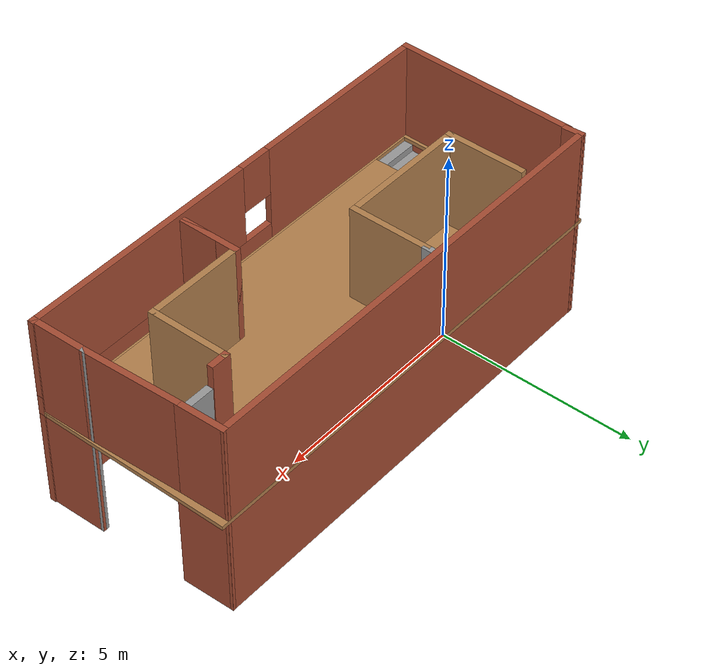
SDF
<?xml version='1.0'?>
<sdf version='1.6'>
  <model name='My_garage2'>
    <pose frame=''>3.19916 -0.754565 0 0 -0 0</pose>
    <link name='Door_0'>
      <collision name='Door_0_Collision'>
        <geometry>
          <box>
            <size>0.9 0.17 2</size>
          </box>
        </geometry>
        <pose frame=''>0 0 1 0 -0 0</pose>
      </collision>
      <visual name='Door_0_Visual'>
        <pose frame=''>0 0 1 0 -0 0</pose>
        <geometry>
          <box>
            <size>0.9 0.17 2</size>
          </box>
        </geometry>
        <material>
          <script>
            <uri>file://media/materials/scripts/gazebo.material</uri>
            <name>Gazebo/Grey</name>
          </script>
        </material>
      </visual>
      <pose frame=''>4.94982 1.09681 2.5 0 -0 0</pose>
    </link>
    <link name='Floor_0'>
      <pose frame=''>0 -0 2.5 0 -0 0</pose>
      <visual name='Floor_0_Visual_0'>
        <pose frame=''>-5.62992 0 0.05 0 -0 0</pose>
        <geometry>
          <box>
            <size>0.241489 4.87682 0.1</size>
          </box>
        </geometry>
        <material>
          <script>
            <uri>file://media/materials/scripts/gazebo.material</uri>
            <name>Gazebo/Wood</name>
          </script>
          <ambient>1 1 1 1</ambient>
        </material>
        <meta>
          <layer>1</layer>
        </meta>
      </visual>
      <collision name='Floor_0_Collision_0'>
        <geometry>
          <box>
            <size>0.241489 4.87682 0.1</size>
          </box>
        </geometry>
        <pose frame=''>-5.62992 0 0.05 0 -0 0</pose>
      </collision>
      <visual name='Floor_0_Visual_1'>
        <pose frame=''>0.120744 -2.3393 0.05 0 -0 0</pose>
        <geometry>
          <box>
            <size>11.2598 0.198217 0.1</size>
          </box>
        </geometry>
        <material>
          <script>
            <uri>file://media/materials/scripts/gazebo.material</uri>
            <name>Gazebo/Wood</name>
          </script>
          <ambient>1 1 1 1</ambient>
        </material>
        <meta>
          <layer>1</layer>
        </meta>
      </visual>
      <collision name='Floor_0_Collision_1'>
        <geometry>
          <box>
            <size>11.2598 0.198217 0.1</size>
          </box>
        </geometry>
        <pose frame=''>0.120744 -2.3393 0.05 0 -0 0</pose>
      </collision>
      <visual name='Floor_0_Visual_2'>
        <pose frame=''>0.620744 0.099108 0.05 0 -0 0</pose>
        <geometry>
          <box>
            <size>10.2598 4.67861 0.1</size>
          </box>
        </geometry>
        <material>
          <script>
            <uri>file://media/materials/scripts/gazebo.material</uri>
            <name>Gazebo/Wood</name>
          </script>
          <ambient>1 1 1 1</ambient>
        </material>
        <meta>
          <layer>1</layer>
        </meta>
      </visual>
      <collision name='Floor_0_Collision_2'>
        <geometry>
          <box>
            <size>10.2598 4.67861 0.1</size>
          </box>
        </geometry>
        <pose frame=''>0.620744 0.099108 0.05 0 -0 0</pose>
      </collision>
      <visual name='Floor_0_Visual_3'>
        <pose frame=''>-5.00917 1.84911 0.05 0 -0 0</pose>
        <geometry>
          <box>
            <size>1 1.1786 0.1</size>
          </box>
        </geometry>
        <material>
          <script>
            <uri>file://media/materials/scripts/gazebo.material</uri>
            <name>Gazebo/Wood</name>
          </script>
          <ambient>1 1 1 1</ambient>
        </material>
        <meta>
          <layer>1</layer>
        </meta>
      </visual>
      <collision name='Floor_0_Collision_3'>
        <geometry>
          <box>
            <size>1 1.1786 0.1</size>
          </box>
        </geometry>
        <pose frame=''>-5.00917 1.84911 0.05 0 -0 0</pose>
      </collision>
    </link>
    <link name='Stairs_0'>
      <visual name='Stairs_0_Visual_0'>
        <pose frame=''>-5.00917 1.14314 0.083333 0 -0 0</pose>
        <geometry>
          <box>
            <size>1 0.233333 0.166667</size>
          </box>
        </geometry>
        <material>
          <script>
            <uri>file://media/materials/scripts/gazebo.material</uri>
            <name>Gazebo/Grey</name>
          </script>
          <ambient>1 1 1 1</ambient>
        </material>
        <meta>
          <layer>0</layer>
        </meta>
      </visual>
      <collision name='Stairs_0_Collision_0'>
        <geometry>
          <box>
            <size>1 0.233333 0.166667</size>
          </box>
        </geometry>
        <pose frame=''>-5.00917 1.14314 0.083333 0 -0 0</pose>
      </collision>
      <visual name='Stairs_0_Visual_1'>
        <pose frame=''>-5.00917 0.909806 0.25 0 -0 0</pose>
        <geometry>
          <box>
            <size>1 0.233333 0.166667</size>
          </box>
        </geometry>
        <material>
          <script>
            <uri>file://media/materials/scripts/gazebo.material</uri>
            <name>Gazebo/Grey</name>
          </script>
          <ambient>1 1 1 1</ambient>
        </material>
        <meta>
          <layer>0</layer>
        </meta>
      </visual>
      <collision name='Stairs_0_Collision_1'>
        <geometry>
          <box>
            <size>1 0.233333 0.166667</size>
          </box>
        </geometry>
        <pose frame=''>-5.00917 0.909806 0.25 0 -0 0</pose>
      </collision>
      <visual name='Stairs_0_Visual_2'>
        <pose frame=''>-5.00917 0.676473 0.416667 0 -0 0</pose>
        <geometry>
          <box>
            <size>1 0.233333 0.166667</size>
          </box>
        </geometry>
        <material>
          <script>
            <uri>file://media/materials/scripts/gazebo.material</uri>
            <name>Gazebo/Grey</name>
          </script>
          <ambient>1 1 1 1</ambient>
        </material>
        <meta>
          <layer>0</layer>
        </meta>
      </visual>
      <collision name='Stairs_0_Collision_2'>
        <geometry>
          <box>
            <size>1 0.233333 0.166667</size>
          </box>
        </geometry>
        <pose frame=''>-5.00917 0.676473 0.416667 0 -0 0</pose>
      </collision>
      <visual name='Stairs_0_Visual_3'>
        <pose frame=''>-5.00917 0.443139 0.583333 0 -0 0</pose>
        <geometry>
          <box>
            <size>1 0.233333 0.166667</size>
          </box>
        </geometry>
        <material>
          <script>
            <uri>file://media/materials/scripts/gazebo.material</uri>
            <name>Gazebo/Grey</name>
          </script>
          <ambient>1 1 1 1</ambient>
        </material>
        <meta>
          <layer>0</layer>
        </meta>
      </visual>
      <collision name='Stairs_0_Collision_3'>
        <geometry>
          <box>
            <size>1 0.233333 0.166667</size>
          </box>
        </geometry>
        <pose frame=''>-5.00917 0.443139 0.583333 0 -0 0</pose>
      </collision>
      <visual name='Stairs_0_Visual_4'>
        <pose frame=''>-5.00917 0.209806 0.75 0 -0 0</pose>
        <geometry>
          <box>
            <size>1 0.233333 0.166667</size>
          </box>
        </geometry>
        <material>
          <script>
            <uri>file://media/materials/scripts/gazebo.material</uri>
            <name>Gazebo/Grey</name>
          </script>
          <ambient>1 1 1 1</ambient>
        </material>
        <meta>
          <layer>0</layer>
        </meta>
      </visual>
      <collision name='Stairs_0_Collision_4'>
        <geometry>
          <box>
            <size>1 0.233333 0.166667</size>
          </box>
        </geometry>
        <pose frame=''>-5.00917 0.209806 0.75 0 -0 0</pose>
      </collision>
      <visual name='Stairs_0_Visual_5'>
        <pose frame=''>-5.00917 -0.023527 0.916667 0 -0 0</pose>
        <geometry>
          <box>
            <size>1 0.233333 0.166667</size>
          </box>
        </geometry>
        <material>
          <script>
            <uri>file://media/materials/scripts/gazebo.material</uri>
            <name>Gazebo/Grey</name>
          </script>
          <ambient>1 1 1 1</ambient>
        </material>
        <meta>
          <layer>0</layer>
        </meta>
      </visual>
      <collision name='Stairs_0_Collision_5'>
        <geometry>
          <box>
            <size>1 0.233333 0.166667</size>
          </box>
        </geometry>
        <pose frame=''>-5.00917 -0.023527 0.916667 0 -0 0</pose>
      </collision>
      <visual name='Stairs_0_Visual_6'>
        <pose frame=''>-5.00917 -0.256861 1.08333 0 -0 0</pose>
        <geometry>
          <box>
            <size>1 0.233333 0.166667</size>
          </box>
        </geometry>
        <material>
          <script>
            <uri>file://media/materials/scripts/gazebo.material</uri>
            <name>Gazebo/Grey</name>
          </script>
          <ambient>1 1 1 1</ambient>
        </material>
        <meta>
          <layer>0</layer>
        </meta>
      </visual>
      <collision name='Stairs_0_Collision_6'>
        <geometry>
          <box>
            <size>1 0.233333 0.166667</size>
          </box>
        </geometry>
        <pose frame=''>-5.00917 -0.256861 1.08333 0 -0 0</pose>
      </collision>
      <visual name='Stairs_0_Visual_7'>
        <pose frame=''>-5.00917 -0.490194 1.25 0 -0 0</pose>
        <geometry>
          <box>
            <size>1 0.233333 0.166667</size>
          </box>
        </geometry>
        <material>
          <script>
            <uri>file://media/materials/scripts/gazebo.material</uri>
            <name>Gazebo/Grey</name>
          </script>
          <ambient>1 1 1 1</ambient>
        </material>
        <meta>
          <layer>0</layer>
        </meta>
      </visual>
      <collision name='Stairs_0_Collision_7'>
        <geometry>
          <box>
            <size>1 0.233333 0.166667</size>
          </box>
        </geometry>
        <pose frame=''>-5.00917 -0.490194 1.25 0 -0 0</pose>
      </collision>
      <visual name='Stairs_0_Visual_8'>
        <pose frame=''>-5.00917 -0.723527 1.41667 0 -0 0</pose>
        <geometry>
          <box>
            <size>1 0.233333 0.166667</size>
          </box>
        </geometry>
        <material>
          <script>
            <uri>file://media/materials/scripts/gazebo.material</uri>
            <name>Gazebo/Grey</name>
          </script>
          <ambient>1 1 1 1</ambient>
        </material>
        <meta>
          <layer>0</layer>
        </meta>
      </visual>
      <collision name='Stairs_0_Collision_8'>
        <geometry>
          <box>
            <size>1 0.233333 0.166667</size>
          </box>
        </geometry>
        <pose frame=''>-5.00917 -0.723527 1.41667 0 -0 0</pose>
      </collision>
      <visual name='Stairs_0_Visual_9'>
        <pose frame=''>-5.00917 -0.956861 1.58333 0 -0 0</pose>
        <geometry>
          <box>
            <size>1 0.233333 0.166667</size>
          </box>
        </geometry>
        <material>
          <script>
            <uri>file://media/materials/scripts/gazebo.material</uri>
            <name>Gazebo/Grey</name>
          </script>
          <ambient>1 1 1 1</ambient>
        </material>
        <meta>
          <layer>0</layer>
        </meta>
      </visual>
      <collision name='Stairs_0_Collision_9'>
        <geometry>
          <box>
            <size>1 0.233333 0.166667</size>
          </box>
        </geometry>
        <pose frame=''>-5.00917 -0.956861 1.58333 0 -0 0</pose>
      </collision>
      <visual name='Stairs_0_Visual_10'>
        <pose frame=''>-5.00917 -1.19019 1.75 0 -0 0</pose>
        <geometry>
          <box>
            <size>1 0.233333 0.166667</size>
          </box>
        </geometry>
        <material>
          <script>
            <uri>file://media/materials/scripts/gazebo.material</uri>
            <name>Gazebo/Grey</name>
          </script>
          <ambient>1 1 1 1</ambient>
        </material>
        <meta>
          <layer>0</layer>
        </meta>
      </visual>
      <collision name='Stairs_0_Collision_10'>
        <geometry>
          <box>
            <size>1 0.233333 0.166667</size>
          </box>
        </geometry>
        <pose frame=''>-5.00917 -1.19019 1.75 0 -0 0</pose>
      </collision>
      <visual name='Stairs_0_Visual_11'>
        <pose frame=''>-5.00917 -1.42353 1.91667 0 -0 0</pose>
        <geometry>
          <box>
            <size>1 0.233333 0.166667</size>
          </box>
        </geometry>
        <material>
          <script>
            <uri>file://media/materials/scripts/gazebo.material</uri>
            <name>Gazebo/Grey</name>
          </script>
          <ambient>1 1 1 1</ambient>
        </material>
        <meta>
          <layer>0</layer>
        </meta>
      </visual>
      <collision name='Stairs_0_Collision_11'>
        <geometry>
          <box>
            <size>1 0.233333 0.166667</size>
          </box>
        </geometry>
        <pose frame=''>-5.00917 -1.42353 1.91667 0 -0 0</pose>
      </collision>
      <visual name='Stairs_0_Visual_12'>
        <pose frame=''>-5.00917 -1.65686 2.08333 0 -0 0</pose>
        <geometry>
          <box>
            <size>1 0.233333 0.166667</size>
          </box>
        </geometry>
        <material>
          <script>
            <uri>file://media/materials/scripts/gazebo.material</uri>
            <name>Gazebo/Grey</name>
          </script>
          <ambient>1 1 1 1</ambient>
        </material>
        <meta>
          <layer>0</layer>
        </meta>
      </visual>
      <collision name='Stairs_0_Collision_12'>
        <geometry>
          <box>
            <size>1 0.233333 0.166667</size>
          </box>
        </geometry>
        <pose frame=''>-5.00917 -1.65686 2.08333 0 -0 0</pose>
      </collision>
      <visual name='Stairs_0_Visual_13'>
        <pose frame=''>-5.00917 -1.89019 2.25 0 -0 0</pose>
        <geometry>
          <box>
            <size>1 0.233333 0.166667</size>
          </box>
        </geometry>
        <material>
          <script>
            <uri>file://media/materials/scripts/gazebo.material</uri>
            <name>Gazebo/Grey</name>
          </script>
          <ambient>1 1 1 1</ambient>
        </material>
        <meta>
          <layer>0</layer>
        </meta>
      </visual>
      <collision name='Stairs_0_Collision_13'>
        <geometry>
          <box>
            <size>1 0.233333 0.166667</size>
          </box>
        </geometry>
        <pose frame=''>-5.00917 -1.89019 2.25 0 -0 0</pose>
      </collision>
      <visual name='Stairs_0_Visual_14'>
        <pose frame=''>-5.00917 -2.12353 2.41667 0 -0 0</pose>
        <geometry>
          <box>
            <size>1 0.233333 0.166667</size>
          </box>
        </geometry>
        <material>
          <script>
            <uri>file://media/materials/scripts/gazebo.material</uri>
            <name>Gazebo/Grey</name>
          </script>
          <ambient>1 1 1 1</ambient>
        </material>
        <meta>
          <layer>0</layer>
        </meta>
      </visual>
      <collision name='Stairs_0_Collision_14'>
        <geometry>
          <box>
            <size>1 0.233333 0.166667</size>
          </box>
        </geometry>
        <pose frame=''>-5.00917 -2.12353 2.41667 0 -0 0</pose>
      </collision>
    </link>
    <link name='Wall_0'>
      <collision name='Wall_0_Collision'>
        <geometry>
          <box>
            <size>4.52115 0.15 2.5</size>
          </box>
        </geometry>
        <pose frame=''>0 0 1.25 0 -0 0</pose>
      </collision>
      <visual name='Wall_0_Visual'>
        <pose frame=''>0 0 1.25 0 -0 0</pose>
        <geometry>
          <box>
            <size>4.52115 0.15 2.5</size>
          </box>
        </geometry>
        <material>
          <script>
            <uri>file://media/materials/scripts/gazebo.material</uri>
            <name>Gazebo/Bricks</name>
          </script>
          <ambient>1 1 1 1</ambient>
        </material>
        <meta>
          <layer>0</layer>
        </meta>
      </visual>
      <pose frame=''>-5.63531 -0.176715 0 0 -0 -1.58865</pose>
    </link>
    <link name='Wall_1'>
      <pose frame=''>0.012164 -2.36208 0 0 -0 0</pose>
      <visual name='Wall_1_Visual_0'>
        <pose frame=''>-4.38392 0 1.25 0 -0 0</pose>
        <geometry>
          <box>
            <size>2.70916 0.15 2.5</size>
          </box>
        </geometry>
        <material>
          <script>
            <uri>file://media/materials/scripts/gazebo.material</uri>
            <name>Gazebo/Bricks</name>
          </script>
          <ambient>1 1 1 1</ambient>
        </material>
        <meta>
          <layer>0</layer>
        </meta>
      </visual>
      <collision name='Wall_1_Collision_0'>
        <geometry>
          <box>
            <size>2.70916 0.15 2.5</size>
          </box>
        </geometry>
        <pose frame=''>-4.38392 0 1.25 0 -0 0</pose>
      </collision>
      <visual name='Wall_1_Visual_1'>
        <pose frame=''>4.07958 0 1.25 0 -0 0</pose>
        <geometry>
          <box>
            <size>3.31784 0.15 2.5</size>
          </box>
        </geometry>
        <material>
          <script>
            <uri>file://media/materials/scripts/gazebo.material</uri>
            <name>Gazebo/Bricks</name>
          </script>
          <ambient>1 1 1 1</ambient>
        </material>
        <meta>
          <layer>0</layer>
        </meta>
      </visual>
      <collision name='Wall_1_Collision_1'>
        <geometry>
          <box>
            <size>3.31784 0.15 2.5</size>
          </box>
        </geometry>
        <pose frame=''>4.07958 0 1.25 0 -0 0</pose>
      </collision>
      <visual name='Wall_1_Visual_2'>
        <pose frame=''>-0.754338 0 0.25 0 -0 0</pose>
        <geometry>
          <box>
            <size>4.55 0.15 0.5</size>
          </box>
        </geometry>
        <material>
          <script>
            <uri>file://media/materials/scripts/gazebo.material</uri>
            <name>Gazebo/Bricks</name>
          </script>
          <ambient>1 1 1 1</ambient>
        </material>
        <meta>
          <layer>0</layer>
        </meta>
      </visual>
      <collision name='Wall_1_Collision_2'>
        <geometry>
          <box>
            <size>4.55 0.15 0.5</size>
          </box>
        </geometry>
        <pose frame=''>-0.754338 0 0.25 0 -0 0</pose>
      </collision>
      <visual name='Wall_1_Visual_3'>
        <pose frame=''>-0.354338 0 1.5 0 -0 0</pose>
        <geometry>
          <box>
            <size>3.75 0.15 2</size>
          </box>
        </geometry>
        <material>
          <script>
            <uri>file://media/materials/scripts/gazebo.material</uri>
            <name>Gazebo/Bricks</name>
          </script>
          <ambient>1 1 1 1</ambient>
        </material>
        <meta>
          <layer>0</layer>
        </meta>
      </visual>
      <collision name='Wall_1_Collision_3'>
        <geometry>
          <box>
            <size>3.75 0.15 2</size>
          </box>
        </geometry>
        <pose frame=''>-0.354338 0 1.5 0 -0 0</pose>
      </collision>
      <visual name='Wall_1_Visual_4'>
        <pose frame=''>-2.62934 0 1.9 0 -0 0</pose>
        <geometry>
          <box>
            <size>0.8 0.15 1.2</size>
          </box>
        </geometry>
        <material>
          <script>
            <uri>file://media/materials/scripts/gazebo.material</uri>
            <name>Gazebo/Bricks</name>
          </script>
          <ambient>1 1 1 1</ambient>
        </material>
        <meta>
          <layer>0</layer>
        </meta>
      </visual>
      <collision name='Wall_1_Collision_4'>
        <geometry>
          <box>
            <size>0.8 0.15 1.2</size>
          </box>
        </geometry>
        <pose frame=''>-2.62934 0 1.9 0 -0 0</pose>
      </collision>
      <visual name='Wall_1_Visual_5'>
        <pose frame=''>1.97066 0 2.25 0 -0 0</pose>
        <geometry>
          <box>
            <size>0.9 0.15 0.5</size>
          </box>
        </geometry>
        <material>
          <script>
            <uri>file://media/materials/scripts/gazebo.material</uri>
            <name>Gazebo/Bricks</name>
          </script>
          <ambient>1 1 1 1</ambient>
        </material>
        <meta>
          <layer>0</layer>
        </meta>
      </visual>
      <collision name='Wall_1_Collision_5'>
        <geometry>
          <box>
            <size>0.9 0.15 0.5</size>
          </box>
        </geometry>
        <pose frame=''>1.97066 0 2.25 0 -0 0</pose>
      </collision>
    </link>
    <link name='Wall_11'>
      <collision name='Wall_11_Collision'>
        <geometry>
          <box>
            <size>4.52143 0.15 2.5</size>
          </box>
        </geometry>
        <pose frame=''>0 0 1.25 0 -0 0</pose>
      </collision>
      <visual name='Wall_11_Visual'>
        <pose frame=''>0 0 1.25 0 -0 0</pose>
        <geometry>
          <box>
            <size>4.52143 0.15 2.5</size>
          </box>
        </geometry>
        <material>
          <script>
            <uri>file://media/materials/scripts/gazebo.material</uri>
            <name>Gazebo/Bricks</name>
          </script>
          <ambient>1 1 1 1</ambient>
        </material>
        <meta>
          <layer>1</layer>
        </meta>
      </visual>
      <pose frame=''>-5.63531 -0.176715 2.5 0 -0 -1.58865</pose>
    </link>
    <link name='Wall_12'>
      <pose frame=''>0.012164 -2.36208 2.5 0 -0 0</pose>
      <visual name='Wall_12_Visual_0'>
        <pose frame=''>-3.40642 0 1.25 0 -0 0</pose>
        <geometry>
          <box>
            <size>4.66416 0.15 2.5</size>
          </box>
        </geometry>
        <material>
          <script>
            <uri>file://media/materials/scripts/gazebo.material</uri>
            <name>Gazebo/Bricks</name>
          </script>
          <ambient>1 1 1 1</ambient>
        </material>
        <meta>
          <layer>1</layer>
        </meta>
      </visual>
      <collision name='Wall_12_Collision_0'>
        <geometry>
          <box>
            <size>4.66416 0.15 2.5</size>
          </box>
        </geometry>
        <pose frame=''>-3.40642 0 1.25 0 -0 0</pose>
      </collision>
      <visual name='Wall_12_Visual_1'>
        <pose frame=''>2.33208 0 0.25 0 -0 0</pose>
        <geometry>
          <box>
            <size>6.81284 0.15 0.5</size>
          </box>
        </geometry>
        <material>
          <script>
            <uri>file://media/materials/scripts/gazebo.material</uri>
            <name>Gazebo/Bricks</name>
          </script>
          <ambient>1 1 1 1</ambient>
        </material>
        <meta>
          <layer>1</layer>
        </meta>
      </visual>
      <collision name='Wall_12_Collision_1'>
        <geometry>
          <box>
            <size>6.81284 0.15 0.5</size>
          </box>
        </geometry>
        <pose frame=''>2.33208 0 0.25 0 -0 0</pose>
      </collision>
      <visual name='Wall_12_Visual_2'>
        <pose frame=''>2.73208 0 1.5 0 -0 0</pose>
        <geometry>
          <box>
            <size>6.01284 0.15 2</size>
          </box>
        </geometry>
        <material>
          <script>
            <uri>file://media/materials/scripts/gazebo.material</uri>
            <name>Gazebo/Bricks</name>
          </script>
          <ambient>1 1 1 1</ambient>
        </material>
        <meta>
          <layer>1</layer>
        </meta>
      </visual>
      <collision name='Wall_12_Collision_2'>
        <geometry>
          <box>
            <size>6.01284 0.15 2</size>
          </box>
        </geometry>
        <pose frame=''>2.73208 0 1.5 0 -0 0</pose>
      </collision>
      <visual name='Wall_12_Visual_3'>
        <pose frame=''>-0.674338 0 1.9 0 -0 0</pose>
        <geometry>
          <box>
            <size>0.8 0.15 1.2</size>
          </box>
        </geometry>
        <material>
          <script>
            <uri>file://media/materials/scripts/gazebo.material</uri>
            <name>Gazebo/Bricks</name>
          </script>
          <ambient>1 1 1 1</ambient>
        </material>
        <meta>
          <layer>1</layer>
        </meta>
      </visual>
      <collision name='Wall_12_Collision_3'>
        <geometry>
          <box>
            <size>0.8 0.15 1.2</size>
          </box>
        </geometry>
        <pose frame=''>-0.674338 0 1.9 0 -0 0</pose>
      </collision>
    </link>
    <link name='Wall_13'>
      <collision name='Wall_13_Collision'>
        <geometry>
          <box>
            <size>1.4772 0.15 2.5</size>
          </box>
        </geometry>
        <pose frame=''>0 0 1.25 0 -0 0</pose>
      </collision>
      <visual name='Wall_13_Visual'>
        <pose frame=''>0 0 1.25 0 -0 0</pose>
        <geometry>
          <box>
            <size>1.4772 0.15 2.5</size>
          </box>
        </geometry>
        <material>
          <script>
            <uri>file://media/materials/scripts/gazebo.material</uri>
            <name>Gazebo/Bricks</name>
          </script>
          <ambient>1 1 1 1</ambient>
        </material>
        <meta>
          <layer>1</layer>
        </meta>
      </visual>
      <pose frame=''>5.64116 -1.69858 2.5 0 -0 1.58813</pose>
    </link>
    <link name='Wall_14'>
      <collision name='Wall_14_Collision'>
        <geometry>
          <box>
            <size>0.15 0.15 2.5</size>
          </box>
        </geometry>
        <pose frame=''>0 0 1.25 0 -0 0</pose>
      </collision>
      <visual name='Wall_14_Visual'>
        <pose frame=''>0 0 1.25 0 -0 0</pose>
        <geometry>
          <box>
            <size>0.15 0.15 2.5</size>
          </box>
        </geometry>
        <material>
          <script>
            <uri>file://media/materials/scripts/gazebo.material</uri>
            <name>Gazebo/Grey</name>
          </script>
          <ambient>1 1 1 1</ambient>
        </material>
        <meta>
          <layer>1</layer>
        </meta>
      </visual>
      <pose frame=''>5.62966 -1.03508 2.5 0 -0 0</pose>
    </link>
    <link name='Wall_15'>
      <collision name='Wall_15_Collision'>
        <geometry>
          <box>
            <size>1.28083 0.15 2.5</size>
          </box>
        </geometry>
        <pose frame=''>0 0 1.25 0 -0 0</pose>
      </collision>
      <visual name='Wall_15_Visual'>
        <pose frame=''>0 0 1.25 0 -0 0</pose>
        <geometry>
          <box>
            <size>1.28083 0.15 2.5</size>
          </box>
        </geometry>
        <material>
          <script>
            <uri>file://media/materials/scripts/gazebo.material</uri>
            <name>Gazebo/Bricks</name>
          </script>
          <ambient>1 1 1 1</ambient>
        </material>
        <meta>
          <layer>1</layer>
        </meta>
      </visual>
      <pose frame=''>5.51893 1.79344 2.5 0 -0 1.5977</pose>
    </link>
    <link name='Wall_16'>
      <collision name='Wall_16_Collision'>
        <geometry>
          <box>
            <size>11.1892 0.15 2.5</size>
          </box>
        </geometry>
        <pose frame=''>0 0 1.25 0 -0 0</pose>
      </collision>
      <visual name='Wall_16_Visual'>
        <pose frame=''>0 0 1.25 0 -0 0</pose>
        <geometry>
          <box>
            <size>11.1892 0.15 2.5</size>
          </box>
        </geometry>
        <material>
          <script>
            <uri>file://media/materials/scripts/gazebo.material</uri>
            <name>Gazebo/Bricks</name>
          </script>
          <ambient>1 1 1 1</ambient>
        </material>
        <meta>
          <layer>1</layer>
        </meta>
      </visual>
      <pose frame=''>-0.015861 2.35865 2.5 0 -0 3.14159</pose>
    </link>
    <link name='Wall_17'>
      <collision name='Wall_17_Collision'>
        <geometry>
          <box>
            <size>0.500755 0.15 2.5</size>
          </box>
        </geometry>
        <pose frame=''>0 0 1.25 0 -0 0</pose>
      </collision>
      <visual name='Wall_17_Visual'>
        <pose frame=''>0 0 1.25 0 -0 0</pose>
        <geometry>
          <box>
            <size>0.500755 0.15 2.5</size>
          </box>
        </geometry>
        <material>
          <script>
            <uri>file://media/materials/scripts/gazebo.material</uri>
            <name>Gazebo/Bricks</name>
          </script>
          <ambient>1 1 1 1</ambient>
        </material>
        <meta>
          <layer>1</layer>
        </meta>
      </visual>
      <pose frame=''>-5.58478 2.18365 2.5 0 -0 -1.50518</pose>
    </link>
    <link name='Wall_18'>
      <collision name='Wall_18_Collision'>
        <geometry>
          <box>
            <size>2 0.15 2.5</size>
          </box>
        </geometry>
        <pose frame=''>0 0 1.25 0 -0 0</pose>
      </collision>
      <visual name='Wall_18_Visual'>
        <pose frame=''>0 0 1.25 0 -0 0</pose>
        <geometry>
          <box>
            <size>2 0.15 2.5</size>
          </box>
        </geometry>
        <material>
          <script>
            <uri>file://media/materials/scripts/gazebo.material</uri>
            <name>Gazebo/Wood</name>
          </script>
          <ambient>1 1 1 1</ambient>
        </material>
        <meta>
          <layer>1</layer>
        </meta>
      </visual>
      <pose frame=''>-3.85918 1.18381 2.5 0 -0 -1.5708</pose>
    </link>
    <link name='Wall_19'>
      <collision name='Wall_19_Collision'>
        <geometry>
          <box>
            <size>3.25 0.15 2.5</size>
          </box>
        </geometry>
        <pose frame=''>0 0 1.25 0 -0 0</pose>
      </collision>
      <visual name='Wall_19_Visual'>
        <pose frame=''>0 0 1.25 0 -0 0</pose>
        <geometry>
          <box>
            <size>3.25 0.15 2.5</size>
          </box>
        </geometry>
        <material>
          <script>
            <uri>file://media/materials/scripts/gazebo.material</uri>
            <name>Gazebo/Wood</name>
          </script>
          <ambient>1 1 1 1</ambient>
        </material>
        <meta>
          <layer>1</layer>
        </meta>
      </visual>
      <pose frame=''>-2.30918 0.258806 2.5 0 -0 0</pose>
    </link>
    <link name='Wall_2'>
      <collision name='Wall_2_Collision'>
        <geometry>
          <box>
            <size>1.4772 0.15 2.5</size>
          </box>
        </geometry>
        <pose frame=''>0 0 1.25 0 -0 0</pose>
      </collision>
      <visual name='Wall_2_Visual'>
        <pose frame=''>0 0 1.25 0 -0 0</pose>
        <geometry>
          <box>
            <size>1.4772 0.15 2.5</size>
          </box>
        </geometry>
        <material>
          <script>
            <uri>file://media/materials/scripts/gazebo.material</uri>
            <name>Gazebo/Bricks</name>
          </script>
          <ambient>1 1 1 1</ambient>
        </material>
        <meta>
          <layer>0</layer>
        </meta>
      </visual>
      <pose frame=''>5.64116 -1.69858 0 0 -0 1.58813</pose>
    </link>
    <link name='Wall_20'>
      <collision name='Wall_20_Collision'>
        <geometry>
          <box>
            <size>2 0.15 2.5</size>
          </box>
        </geometry>
        <pose frame=''>0 0 1.25 0 -0 0</pose>
      </collision>
      <visual name='Wall_20_Visual'>
        <pose frame=''>0 0 1.25 0 -0 0</pose>
        <geometry>
          <box>
            <size>2 0.15 2.5</size>
          </box>
        </geometry>
        <material>
          <script>
            <uri>file://media/materials/scripts/gazebo.material</uri>
            <name>Gazebo/Wood</name>
          </script>
          <ambient>1 1 1 1</ambient>
        </material>
        <meta>
          <layer>1</layer>
        </meta>
      </visual>
      <pose frame=''>-0.759174 1.18381 2.5 0 -0 1.5708</pose>
    </link>
    <link name='Wall_21'>
      <collision name='Wall_21_Collision'>
        <geometry>
          <box>
            <size>0.25 0.15 2.5</size>
          </box>
        </geometry>
        <pose frame=''>0 0 1.25 0 -0 0</pose>
      </collision>
      <visual name='Wall_21_Visual'>
        <pose frame=''>0 0 1.25 0 -0 0</pose>
        <geometry>
          <box>
            <size>0.25 0.15 2.5</size>
          </box>
        </geometry>
        <material>
          <script>
            <uri>file://media/materials/scripts/gazebo.material</uri>
            <name>Gazebo/Grey</name>
          </script>
          <ambient>1 1 1 1</ambient>
        </material>
        <meta>
          <layer>1</layer>
        </meta>
      </visual>
      <pose frame=''>-0.759174 2.15881 2.5 0 -0 1.5708</pose>
    </link>
    <link name='Wall_23'>
      <collision name='Wall_23_Collision'>
        <geometry>
          <box>
            <size>1.5 0.15 2.5</size>
          </box>
        </geometry>
        <pose frame=''>0 0 1.25 0 -0 0</pose>
      </collision>
      <visual name='Wall_23_Visual'>
        <pose frame=''>0 0 1.25 0 -0 0</pose>
        <geometry>
          <box>
            <size>1.5 0.15 2.5</size>
          </box>
        </geometry>
        <material>
          <script>
            <uri>file://media/materials/scripts/gazebo.material</uri>
            <name>Gazebo/Bricks</name>
          </script>
          <ambient>1 1 1 1</ambient>
        </material>
        <meta>
          <layer>1</layer>
        </meta>
      </visual>
      <pose frame=''>1.68382 -1.44119 2.5 0 -0 -1.5708</pose>
    </link>
    <link name='Wall_24'>
      <collision name='Wall_24_Collision'>
        <geometry>
          <box>
            <size>1.5 0.15 2.5</size>
          </box>
        </geometry>
        <pose frame=''>0 0 1.25 0 -0 0</pose>
      </collision>
      <visual name='Wall_24_Visual'>
        <pose frame=''>0 0 1.25 0 -0 0</pose>
        <geometry>
          <box>
            <size>1.5 0.15 2.5</size>
          </box>
        </geometry>
        <material>
          <script>
            <uri>file://media/materials/scripts/gazebo.material</uri>
            <name>Gazebo/Bricks</name>
          </script>
          <ambient>1 1 1 1</ambient>
        </material>
        <meta>
          <layer>1</layer>
        </meta>
      </visual>
      <pose frame=''>1.68382 -1.44119 2.5 0 -0 1.5708</pose>
    </link>
    <link name='Wall_25'>
      <collision name='Wall_25_Collision'>
        <geometry>
          <box>
            <size>2.5 0.15 2.5</size>
          </box>
        </geometry>
        <pose frame=''>0 0 1.25 0 -0 0</pose>
      </collision>
      <visual name='Wall_25_Visual'>
        <pose frame=''>0 0 1.25 0 -0 0</pose>
        <geometry>
          <box>
            <size>2.5 0.15 2.5</size>
          </box>
        </geometry>
        <material>
          <script>
            <uri>file://media/materials/scripts/gazebo.material</uri>
            <name>Gazebo/Wood</name>
          </script>
          <ambient>1 1 1 1</ambient>
        </material>
        <meta>
          <layer>1</layer>
        </meta>
      </visual>
      <pose frame=''>2.85883 -0.766194 2.5 0 -0 0</pose>
    </link>
    <link name='Wall_26'>
      <collision name='Wall_26_Collision'>
        <geometry>
          <box>
            <size>2 0.15 2.5</size>
          </box>
        </geometry>
        <pose frame=''>0 0 1.25 0 -0 0</pose>
      </collision>
      <visual name='Wall_26_Visual'>
        <pose frame=''>0 0 1.25 0 -0 0</pose>
        <geometry>
          <box>
            <size>2 0.15 2.5</size>
          </box>
        </geometry>
        <material>
          <script>
            <uri>file://media/materials/scripts/gazebo.material</uri>
            <name>Gazebo/Wood</name>
          </script>
          <ambient>1 1 1 1</ambient>
        </material>
        <meta>
          <layer>1</layer>
        </meta>
      </visual>
      <pose frame=''>4.03383 0.158806 2.5 0 -0 1.5708</pose>
    </link>
    <link name='Wall_27'>
      <collision name='Wall_27_Collision'>
        <geometry>
          <box>
            <size>0.5 0.15 2.5</size>
          </box>
        </geometry>
        <pose frame=''>0 0 1.25 0 -0 0</pose>
      </collision>
      <visual name='Wall_27_Visual'>
        <pose frame=''>0 0 1.25 0 -0 0</pose>
        <geometry>
          <box>
            <size>0.5 0.15 2.5</size>
          </box>
        </geometry>
        <material>
          <script>
            <uri>file://media/materials/scripts/gazebo.material</uri>
            <name>Gazebo/Bricks</name>
          </script>
          <ambient>1 1 1 1</ambient>
        </material>
        <meta>
          <layer>1</layer>
        </meta>
      </visual>
      <pose frame=''>4.20883 1.08381 2.5 0 -0 0</pose>
    </link>
    <link name='Wall_29'>
      <collision name='Wall_29_Collision'>
        <geometry>
          <box>
            <size>2.41533 0.15 2.5</size>
          </box>
        </geometry>
        <pose frame=''>0 0 1.25 0 -0 0</pose>
      </collision>
      <visual name='Wall_29_Visual'>
        <pose frame=''>0 0 1.25 0 -0 0</pose>
        <geometry>
          <box>
            <size>2.41533 0.15 2.5</size>
          </box>
        </geometry>
        <material>
          <script>
            <uri>file://media/materials/scripts/gazebo.material</uri>
            <name>Gazebo/Bricks</name>
          </script>
          <ambient>1 1 1 1</ambient>
        </material>
        <meta>
          <layer>1</layer>
        </meta>
      </visual>
      <pose frame=''>5.5819 0.096577 2.5 0 -0 -1.52862</pose>
    </link>
    <link name='Wall_3'>
      <collision name='Wall_3_Collision'>
        <geometry>
          <box>
            <size>0.15 0.15 2.5</size>
          </box>
        </geometry>
        <pose frame=''>0 0 1.25 0 -0 0</pose>
      </collision>
      <visual name='Wall_3_Visual'>
        <pose frame=''>0 0 1.25 0 -0 0</pose>
        <geometry>
          <box>
            <size>0.15 0.15 2.5</size>
          </box>
        </geometry>
        <material>
          <script>
            <uri>file://media/materials/scripts/gazebo.material</uri>
            <name>Gazebo/Grey</name>
          </script>
          <ambient>1 1 1 1</ambient>
        </material>
        <meta>
          <layer>0</layer>
        </meta>
      </visual>
      <pose frame=''>5.62966 -1.03508 0 0 -0 0</pose>
    </link>
    <link name='Wall_5'>
      <collision name='Wall_5_Collision'>
        <geometry>
          <box>
            <size>1.28083 0.15 2.5</size>
          </box>
        </geometry>
        <pose frame=''>0 0 1.25 0 -0 0</pose>
      </collision>
      <visual name='Wall_5_Visual'>
        <pose frame=''>0 0 1.25 0 -0 0</pose>
        <geometry>
          <box>
            <size>1.28083 0.15 2.5</size>
          </box>
        </geometry>
        <material>
          <script>
            <uri>file://media/materials/scripts/gazebo.material</uri>
            <name>Gazebo/Bricks</name>
          </script>
          <ambient>1 1 1 1</ambient>
        </material>
        <meta>
          <layer>0</layer>
        </meta>
      </visual>
      <pose frame=''>5.51893 1.79344 0 0 -0 1.5977</pose>
    </link>
    <link name='Wall_8'>
      <collision name='Wall_8_Collision'>
        <geometry>
          <box>
            <size>11.1892 0.15 2.5</size>
          </box>
        </geometry>
        <pose frame=''>0 0 1.25 0 -0 0</pose>
      </collision>
      <visual name='Wall_8_Visual'>
        <pose frame=''>0 0 1.25 0 -0 0</pose>
        <geometry>
          <box>
            <size>11.1892 0.15 2.5</size>
          </box>
        </geometry>
        <material>
          <script>
            <uri>file://media/materials/scripts/gazebo.material</uri>
            <name>Gazebo/Bricks</name>
          </script>
          <ambient>1 1 1 1</ambient>
        </material>
        <meta>
          <layer>0</layer>
        </meta>
      </visual>
      <pose frame=''>-0.015861 2.35865 0 0 -0 3.14159</pose>
    </link>
    <link name='Wall_9'>
      <collision name='Wall_9_Collision'>
        <geometry>
          <box>
            <size>0.500755 0.15 2.5</size>
          </box>
        </geometry>
        <pose frame=''>0 0 1.25 0 -0 0</pose>
      </collision>
      <visual name='Wall_9_Visual'>
        <pose frame=''>0 0 1.25 0 -0 0</pose>
        <geometry>
          <box>
            <size>0.500755 0.15 2.5</size>
          </box>
        </geometry>
        <material>
          <script>
            <uri>file://media/materials/scripts/gazebo.material</uri>
            <name>Gazebo/Bricks</name>
          </script>
          <ambient>1 1 1 1</ambient>
        </material>
        <meta>
          <layer>0</layer>
        </meta>
      </visual>
      <pose frame=''>-5.58478 2.18365 0 0 -0 -1.50518</pose>
    </link>
    <static>1</static>
  </model>
</sdf>
